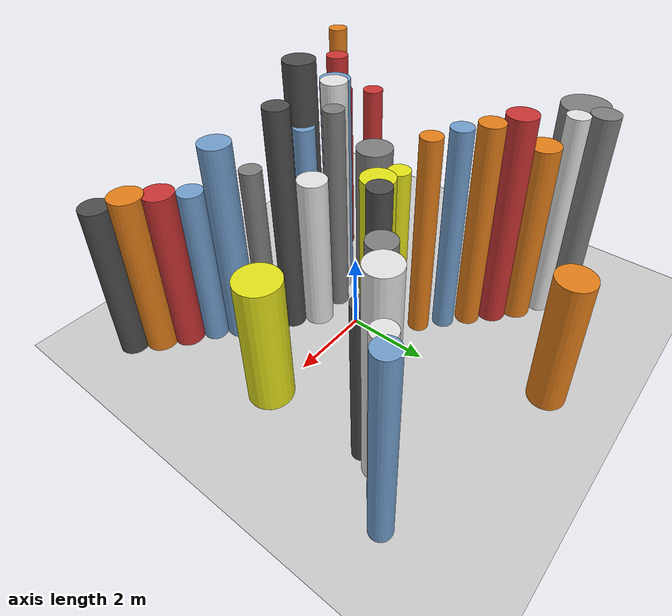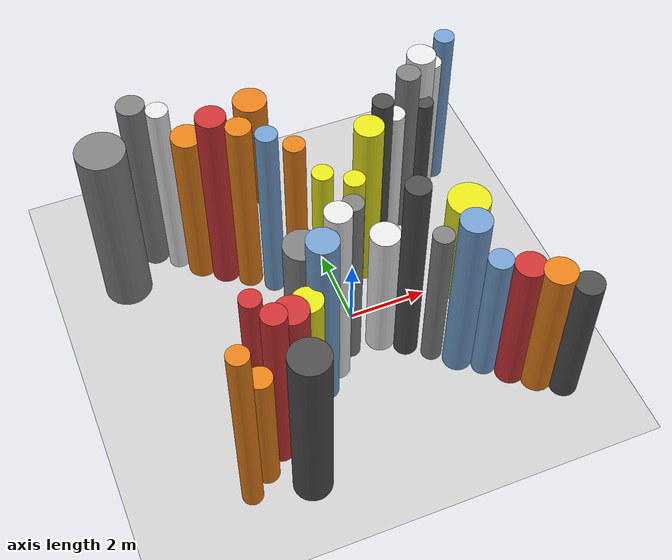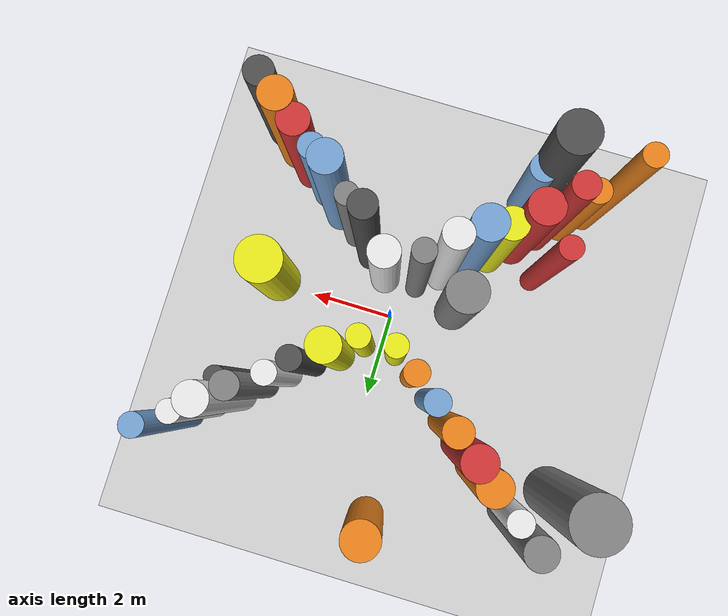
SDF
<?xml version='1.0'?>
<sdf version='1.6'>
  <world name='routeA_rl_v1__dense_recovery__rl_train__bottleneck_corridor__000065'>
    <!-- Sun light -->
    <light name='sun' type='directional'>
      <cast_shadows>1</cast_shadows>
      <pose>0 0 10 0 0 0</pose>
      <diffuse>0.8 0.8 0.8 1</diffuse>
      <specular>0.2 0.2 0.2 1</specular>
      <attenuation>
        <range>1000</range>
        <constant>0.9</constant>
        <linear>0.01</linear>
        <quadratic>0.001</quadratic>
      </attenuation>
      <direction>-0.5 0.1 -0.9</direction>
    </light>

    <!-- Ground plane -->
    <model name='ground_plane'>
      <static>1</static>
      <link name='link'>
        <collision name='collision'>
          <geometry>
            <plane>
              <normal>0 0 1</normal>
              <size>100 100</size>
            </plane>
          </geometry>
          <surface>
            <contact>
              <collide_bitmask>65535</collide_bitmask>
              <ode/>
            </contact>
            <friction>
              <ode>
                <mu>100</mu>
                <mu2>50</mu2>
              </ode>
              <torsional><ode/></torsional>
            </friction>
            <bounce/>
          </surface>
          <max_contacts>10</max_contacts>
        </collision>
        <visual name='visual'>
          <cast_shadows>0</cast_shadows>
          <geometry>
            <plane>
              <normal>0 0 1</normal>
              <size>100 100</size>
            </plane>
          </geometry>
          <material>
            <script>
              <uri>file://media/materials/scripts/gazebo.material</uri>
              <n>Gazebo/Grey</n>
            </script>
          </material>
        </visual>
      </link>
    </model>

    <!-- Environment -->
    <magnetic_field>6e-06 2.3e-05 -4.2e-05</magnetic_field>
    <atmosphere type='adiabatic'/>
    <physics name='default_physics' default='0' type='ode'>
      <gravity>0 0 -9.8</gravity>
      <max_step_size>0.004</max_step_size>
      <real_time_factor>1</real_time_factor>
      <real_time_update_rate>250</real_time_update_rate>
    </physics>
    <scene>
      <ambient>0.4 0.4 0.4 1</ambient>
      <background>0.7 0.7 0.7 1</background>
      <shadows>1</shadows>
    </scene>
    <wind/>
    <spherical_coordinates>
      <surface_model>EARTH_WGS84</surface_model>
      <latitude_deg>0</latitude_deg>
      <longitude_deg>0</longitude_deg>
      <elevation>0</elevation>
      <heading_deg>0</heading_deg>
    </spherical_coordinates>

    <!-- ============ OBSTACLES (40) ============ -->
    <model name='funnel_l_0'>
      <static>1</static>
      <link name='link'>
        <visual name='visual'>
          <geometry>
            <cylinder>
              <radius>0.2511</radius>
              <length>5.7682</length>
            </cylinder>
          </geometry>
          <material>
            <script>
              <n>Gazebo/Orange</n>
              <uri>file://media/materials/scripts/gazebo.material</uri>
            </script>
            <ambient>0.9 0.5 0.1 1</ambient>
          </material>
        </visual>
        <collision name='collision'>
          <geometry>
            <cylinder>
              <radius>0.2511</radius>
              <length>5.7682</length>
            </cylinder>
          </geometry>
          <max_contacts>10</max_contacts>
          <surface>
            <contact><ode/></contact>
            <bounce/>
            <friction>
              <ode><mu>1</mu><mu2>1</mu2></ode>
              <torsional><ode/></torsional>
            </friction>
          </surface>
        </collision>
      </link>
      <pose>-4.0000 -3.8000 2.8841 0 0 0.0000</pose>
    </model>

    <model name='funnel_r_0'>
      <static>1</static>
      <link name='link'>
        <visual name='visual'>
          <geometry>
            <cylinder>
              <radius>0.3391</radius>
              <length>5.4602</length>
            </cylinder>
          </geometry>
          <material>
            <script>
              <n>Gazebo/Grey</n>
              <uri>file://media/materials/scripts/gazebo.material</uri>
            </script>
            <ambient>0.5 0.5 0.5 1</ambient>
          </material>
        </visual>
        <collision name='collision'>
          <geometry>
            <cylinder>
              <radius>0.3391</radius>
              <length>5.4602</length>
            </cylinder>
          </geometry>
          <max_contacts>10</max_contacts>
          <surface>
            <contact><ode/></contact>
            <bounce/>
            <friction>
              <ode><mu>1</mu><mu2>1</mu2></ode>
              <torsional><ode/></torsional>
            </friction>
          </surface>
        </collision>
      </link>
      <pose>-4.0000 3.8000 2.7301 0 0 0.0000</pose>
    </model>

    <model name='funnel_l_1'>
      <static>1</static>
      <link name='link'>
        <visual name='visual'>
          <geometry>
            <cylinder>
              <radius>0.2851</radius>
              <length>4.0687</length>
            </cylinder>
          </geometry>
          <material>
            <script>
              <n>Gazebo/Orange</n>
              <uri>file://media/materials/scripts/gazebo.material</uri>
            </script>
            <ambient>0.9 0.5 0.1 1</ambient>
          </material>
        </visual>
        <collision name='collision'>
          <geometry>
            <cylinder>
              <radius>0.2851</radius>
              <length>4.0687</length>
            </cylinder>
          </geometry>
          <max_contacts>10</max_contacts>
          <surface>
            <contact><ode/></contact>
            <bounce/>
            <friction>
              <ode><mu>1</mu><mu2>1</mu2></ode>
              <torsional><ode/></torsional>
            </friction>
          </surface>
        </collision>
      </link>
      <pose>-3.4857 -3.3857 2.0343 0 0 0.0000</pose>
    </model>

    <model name='funnel_r_1'>
      <static>1</static>
      <link name='link'>
        <visual name='visual'>
          <geometry>
            <cylinder>
              <radius>0.2650</radius>
              <length>5.5007</length>
            </cylinder>
          </geometry>
          <material>
            <script>
              <n>Gazebo/White</n>
              <uri>file://media/materials/scripts/gazebo.material</uri>
            </script>
            <ambient>0.9 0.9 0.9 1</ambient>
          </material>
        </visual>
        <collision name='collision'>
          <geometry>
            <cylinder>
              <radius>0.2650</radius>
              <length>5.5007</length>
            </cylinder>
          </geometry>
          <max_contacts>10</max_contacts>
          <surface>
            <contact><ode/></contact>
            <bounce/>
            <friction>
              <ode><mu>1</mu><mu2>1</mu2></ode>
              <torsional><ode/></torsional>
            </friction>
          </surface>
        </collision>
      </link>
      <pose>-3.4857 3.3857 2.7503 0 0 0.0000</pose>
    </model>

    <model name='funnel_l_2'>
      <static>1</static>
      <link name='link'>
        <visual name='visual'>
          <geometry>
            <cylinder>
              <radius>0.2880</radius>
              <length>5.5020</length>
            </cylinder>
          </geometry>
          <material>
            <script>
              <n>Gazebo/Red</n>
              <uri>file://media/materials/scripts/gazebo.material</uri>
            </script>
            <ambient>0.8 0.2 0.2 1</ambient>
          </material>
        </visual>
        <collision name='collision'>
          <geometry>
            <cylinder>
              <radius>0.2880</radius>
              <length>5.5020</length>
            </cylinder>
          </geometry>
          <max_contacts>10</max_contacts>
          <surface>
            <contact><ode/></contact>
            <bounce/>
            <friction>
              <ode><mu>1</mu><mu2>1</mu2></ode>
              <torsional><ode/></torsional>
            </friction>
          </surface>
        </collision>
      </link>
      <pose>-2.9714 -2.9714 2.7510 0 0 0.0000</pose>
    </model>

    <model name='funnel_r_2'>
      <static>1</static>
      <link name='link'>
        <visual name='visual'>
          <geometry>
            <cylinder>
              <radius>0.3783</radius>
              <length>4.8548</length>
            </cylinder>
          </geometry>
          <material>
            <script>
              <n>Gazebo/Orange</n>
              <uri>file://media/materials/scripts/gazebo.material</uri>
            </script>
            <ambient>0.9 0.5 0.1 1</ambient>
          </material>
        </visual>
        <collision name='collision'>
          <geometry>
            <cylinder>
              <radius>0.3783</radius>
              <length>4.8548</length>
            </cylinder>
          </geometry>
          <max_contacts>10</max_contacts>
          <surface>
            <contact><ode/></contact>
            <bounce/>
            <friction>
              <ode><mu>1</mu><mu2>1</mu2></ode>
              <torsional><ode/></torsional>
            </friction>
          </surface>
        </collision>
      </link>
      <pose>-2.9714 2.9714 2.4274 0 0 0.0000</pose>
    </model>

    <model name='funnel_l_3'>
      <static>1</static>
      <link name='link'>
        <visual name='visual'>
          <geometry>
            <cylinder>
              <radius>0.3934</radius>
              <length>4.8369</length>
            </cylinder>
          </geometry>
          <material>
            <script>
              <n>Gazebo/Red</n>
              <uri>file://media/materials/scripts/gazebo.material</uri>
            </script>
            <ambient>0.8 0.2 0.2 1</ambient>
          </material>
        </visual>
        <collision name='collision'>
          <geometry>
            <cylinder>
              <radius>0.3934</radius>
              <length>4.8369</length>
            </cylinder>
          </geometry>
          <max_contacts>10</max_contacts>
          <surface>
            <contact><ode/></contact>
            <bounce/>
            <friction>
              <ode><mu>1</mu><mu2>1</mu2></ode>
              <torsional><ode/></torsional>
            </friction>
          </surface>
        </collision>
      </link>
      <pose>-2.4571 -2.5571 2.4184 0 0 0.0000</pose>
    </model>

    <model name='funnel_r_3'>
      <static>1</static>
      <link name='link'>
        <visual name='visual'>
          <geometry>
            <cylinder>
              <radius>0.3618</radius>
              <length>5.6729</length>
            </cylinder>
          </geometry>
          <material>
            <script>
              <n>Gazebo/Red</n>
              <uri>file://media/materials/scripts/gazebo.material</uri>
            </script>
            <ambient>0.8 0.2 0.2 1</ambient>
          </material>
        </visual>
        <collision name='collision'>
          <geometry>
            <cylinder>
              <radius>0.3618</radius>
              <length>5.6729</length>
            </cylinder>
          </geometry>
          <max_contacts>10</max_contacts>
          <surface>
            <contact><ode/></contact>
            <bounce/>
            <friction>
              <ode><mu>1</mu><mu2>1</mu2></ode>
              <torsional><ode/></torsional>
            </friction>
          </surface>
        </collision>
      </link>
      <pose>-2.4571 2.5571 2.8365 0 0 0.0000</pose>
    </model>

    <model name='funnel_l_4'>
      <static>1</static>
      <link name='link'>
        <visual name='visual'>
          <geometry>
            <cylinder>
              <radius>0.3599</radius>
              <length>4.4024</length>
            </cylinder>
          </geometry>
          <material>
            <script>
              <n>Gazebo/Yellow</n>
              <uri>file://media/materials/scripts/gazebo.material</uri>
            </script>
            <ambient>0.9 0.9 0.1 1</ambient>
          </material>
        </visual>
        <collision name='collision'>
          <geometry>
            <cylinder>
              <radius>0.3599</radius>
              <length>4.4024</length>
            </cylinder>
          </geometry>
          <max_contacts>10</max_contacts>
          <surface>
            <contact><ode/></contact>
            <bounce/>
            <friction>
              <ode><mu>1</mu><mu2>1</mu2></ode>
              <torsional><ode/></torsional>
            </friction>
          </surface>
        </collision>
      </link>
      <pose>-1.9429 -2.1429 2.2012 0 0 0.0000</pose>
    </model>

    <model name='funnel_r_4'>
      <static>1</static>
      <link name='link'>
        <visual name='visual'>
          <geometry>
            <cylinder>
              <radius>0.3068</radius>
              <length>5.5551</length>
            </cylinder>
          </geometry>
          <material>
            <script>
              <n>Gazebo/Orange</n>
              <uri>file://media/materials/scripts/gazebo.material</uri>
            </script>
            <ambient>0.9 0.5 0.1 1</ambient>
          </material>
        </visual>
        <collision name='collision'>
          <geometry>
            <cylinder>
              <radius>0.3068</radius>
              <length>5.5551</length>
            </cylinder>
          </geometry>
          <max_contacts>10</max_contacts>
          <surface>
            <contact><ode/></contact>
            <bounce/>
            <friction>
              <ode><mu>1</mu><mu2>1</mu2></ode>
              <torsional><ode/></torsional>
            </friction>
          </surface>
        </collision>
      </link>
      <pose>-1.9429 2.1429 2.7775 0 0 0.0000</pose>
    </model>

    <model name='funnel_l_5'>
      <static>1</static>
      <link name='link'>
        <visual name='visual'>
          <geometry>
            <cylinder>
              <radius>0.3697</radius>
              <length>5.6843</length>
            </cylinder>
          </geometry>
          <material>
            <script>
              <n>Gazebo/Blue</n>
              <uri>file://media/materials/scripts/gazebo.material</uri>
            </script>
            <ambient>0.447 0.624 0.812 1</ambient>
          </material>
        </visual>
        <collision name='collision'>
          <geometry>
            <cylinder>
              <radius>0.3697</radius>
              <length>5.6843</length>
            </cylinder>
          </geometry>
          <max_contacts>10</max_contacts>
          <surface>
            <contact><ode/></contact>
            <bounce/>
            <friction>
              <ode><mu>1</mu><mu2>1</mu2></ode>
              <torsional><ode/></torsional>
            </friction>
          </surface>
        </collision>
      </link>
      <pose>-1.4286 -1.7286 2.8421 0 0 0.0000</pose>
    </model>

    <model name='funnel_r_5'>
      <static>1</static>
      <link name='link'>
        <visual name='visual'>
          <geometry>
            <cylinder>
              <radius>0.2661</radius>
              <length>5.5232</length>
            </cylinder>
          </geometry>
          <material>
            <script>
              <n>Gazebo/Blue</n>
              <uri>file://media/materials/scripts/gazebo.material</uri>
            </script>
            <ambient>0.447 0.624 0.812 1</ambient>
          </material>
        </visual>
        <collision name='collision'>
          <geometry>
            <cylinder>
              <radius>0.2661</radius>
              <length>5.5232</length>
            </cylinder>
          </geometry>
          <max_contacts>10</max_contacts>
          <surface>
            <contact><ode/></contact>
            <bounce/>
            <friction>
              <ode><mu>1</mu><mu2>1</mu2></ode>
              <torsional><ode/></torsional>
            </friction>
          </surface>
        </collision>
      </link>
      <pose>-1.4286 1.7286 2.7616 0 0 0.0000</pose>
    </model>

    <model name='funnel_l_6'>
      <static>1</static>
      <link name='link'>
        <visual name='visual'>
          <geometry>
            <cylinder>
              <radius>0.3135</radius>
              <length>5.9145</length>
            </cylinder>
          </geometry>
          <material>
            <script>
              <n>Gazebo/White</n>
              <uri>file://media/materials/scripts/gazebo.material</uri>
            </script>
            <ambient>0.9 0.9 0.9 1</ambient>
          </material>
        </visual>
        <collision name='collision'>
          <geometry>
            <cylinder>
              <radius>0.3135</radius>
              <length>5.9145</length>
            </cylinder>
          </geometry>
          <max_contacts>10</max_contacts>
          <surface>
            <contact><ode/></contact>
            <bounce/>
            <friction>
              <ode><mu>1</mu><mu2>1</mu2></ode>
              <torsional><ode/></torsional>
            </friction>
          </surface>
        </collision>
      </link>
      <pose>-0.9143 -1.3143 2.9572 0 0 0.0000</pose>
    </model>

    <model name='funnel_r_6'>
      <static>1</static>
      <link name='link'>
        <visual name='visual'>
          <geometry>
            <cylinder>
              <radius>0.2603</radius>
              <length>5.3952</length>
            </cylinder>
          </geometry>
          <material>
            <script>
              <n>Gazebo/Orange</n>
              <uri>file://media/materials/scripts/gazebo.material</uri>
            </script>
            <ambient>0.9 0.5 0.1 1</ambient>
          </material>
        </visual>
        <collision name='collision'>
          <geometry>
            <cylinder>
              <radius>0.2603</radius>
              <length>5.3952</length>
            </cylinder>
          </geometry>
          <max_contacts>10</max_contacts>
          <surface>
            <contact><ode/></contact>
            <bounce/>
            <friction>
              <ode><mu>1</mu><mu2>1</mu2></ode>
              <torsional><ode/></torsional>
            </friction>
          </surface>
        </collision>
      </link>
      <pose>-0.9143 1.3143 2.6976 0 0 0.0000</pose>
    </model>

    <model name='funnel_l_7'>
      <static>1</static>
      <link name='link'>
        <visual name='visual'>
          <geometry>
            <cylinder>
              <radius>0.2511</radius>
              <length>5.5447</length>
            </cylinder>
          </geometry>
          <material>
            <script>
              <n>Gazebo/Grey</n>
              <uri>file://media/materials/scripts/gazebo.material</uri>
            </script>
            <ambient>0.5 0.5 0.5 1</ambient>
          </material>
        </visual>
        <collision name='collision'>
          <geometry>
            <cylinder>
              <radius>0.2511</radius>
              <length>5.5447</length>
            </cylinder>
          </geometry>
          <max_contacts>10</max_contacts>
          <surface>
            <contact><ode/></contact>
            <bounce/>
            <friction>
              <ode><mu>1</mu><mu2>1</mu2></ode>
              <torsional><ode/></torsional>
            </friction>
          </surface>
        </collision>
      </link>
      <pose>-0.4000 -0.9000 2.7723 0 0 0.0000</pose>
    </model>

    <model name='funnel_r_7'>
      <static>1</static>
      <link name='link'>
        <visual name='visual'>
          <geometry>
            <cylinder>
              <radius>0.2552</radius>
              <length>4.6659</length>
            </cylinder>
          </geometry>
          <material>
            <script>
              <n>Gazebo/Yellow</n>
              <uri>file://media/materials/scripts/gazebo.material</uri>
            </script>
            <ambient>0.9 0.9 0.1 1</ambient>
          </material>
        </visual>
        <collision name='collision'>
          <geometry>
            <cylinder>
              <radius>0.2552</radius>
              <length>4.6659</length>
            </cylinder>
          </geometry>
          <max_contacts>10</max_contacts>
          <surface>
            <contact><ode/></contact>
            <bounce/>
            <friction>
              <ode><mu>1</mu><mu2>1</mu2></ode>
              <torsional><ode/></torsional>
            </friction>
          </surface>
        </collision>
      </link>
      <pose>-0.4000 0.9000 2.3330 0 0 0.0000</pose>
    </model>

    <model name='funnel_out_l_0'>
      <static>1</static>
      <link name='link'>
        <visual name='visual'>
          <geometry>
            <cylinder>
              <radius>0.3619</radius>
              <length>4.1329</length>
            </cylinder>
          </geometry>
          <material>
            <script>
              <n>Gazebo/White</n>
              <uri>file://media/materials/scripts/gazebo.material</uri>
            </script>
            <ambient>0.9 0.9 0.9 1</ambient>
          </material>
        </visual>
        <collision name='collision'>
          <geometry>
            <cylinder>
              <radius>0.3619</radius>
              <length>4.1329</length>
            </cylinder>
          </geometry>
          <max_contacts>10</max_contacts>
          <surface>
            <contact><ode/></contact>
            <bounce/>
            <friction>
              <ode><mu>1</mu><mu2>1</mu2></ode>
              <torsional><ode/></torsional>
            </friction>
          </surface>
        </collision>
      </link>
      <pose>0.4000 -0.9000 2.0664 0 0 0.0000</pose>
    </model>

    <model name='funnel_out_r_0'>
      <static>1</static>
      <link name='link'>
        <visual name='visual'>
          <geometry>
            <cylinder>
              <radius>0.2657</radius>
              <length>4.1282</length>
            </cylinder>
          </geometry>
          <material>
            <script>
              <n>Gazebo/Yellow</n>
              <uri>file://media/materials/scripts/gazebo.material</uri>
            </script>
            <ambient>0.9 0.9 0.1 1</ambient>
          </material>
        </visual>
        <collision name='collision'>
          <geometry>
            <cylinder>
              <radius>0.2657</radius>
              <length>4.1282</length>
            </cylinder>
          </geometry>
          <max_contacts>10</max_contacts>
          <surface>
            <contact><ode/></contact>
            <bounce/>
            <friction>
              <ode><mu>1</mu><mu2>1</mu2></ode>
              <torsional><ode/></torsional>
            </friction>
          </surface>
        </collision>
      </link>
      <pose>0.4000 0.9000 2.0641 0 0 0.0000</pose>
    </model>

    <model name='funnel_out_l_1'>
      <static>1</static>
      <link name='link'>
        <visual name='visual'>
          <geometry>
            <cylinder>
              <radius>0.2947</radius>
              <length>5.9773</length>
            </cylinder>
          </geometry>
          <material>
            <script>
              <n>Gazebo/DarkGrey</n>
              <uri>file://media/materials/scripts/gazebo.material</uri>
            </script>
            <ambient>0.3 0.3 0.3 1</ambient>
          </material>
        </visual>
        <collision name='collision'>
          <geometry>
            <cylinder>
              <radius>0.2947</radius>
              <length>5.9773</length>
            </cylinder>
          </geometry>
          <max_contacts>10</max_contacts>
          <surface>
            <contact><ode/></contact>
            <bounce/>
            <friction>
              <ode><mu>1</mu><mu2>1</mu2></ode>
              <torsional><ode/></torsional>
            </friction>
          </surface>
        </collision>
      </link>
      <pose>0.9143 -1.3143 2.9887 0 0 0.0000</pose>
    </model>

    <model name='funnel_out_r_1'>
      <static>1</static>
      <link name='link'>
        <visual name='visual'>
          <geometry>
            <cylinder>
              <radius>0.3610</radius>
              <length>5.2778</length>
            </cylinder>
          </geometry>
          <material>
            <script>
              <n>Gazebo/Yellow</n>
              <uri>file://media/materials/scripts/gazebo.material</uri>
            </script>
            <ambient>0.9 0.9 0.1 1</ambient>
          </material>
        </visual>
        <collision name='collision'>
          <geometry>
            <cylinder>
              <radius>0.3610</radius>
              <length>5.2778</length>
            </cylinder>
          </geometry>
          <max_contacts>10</max_contacts>
          <surface>
            <contact><ode/></contact>
            <bounce/>
            <friction>
              <ode><mu>1</mu><mu2>1</mu2></ode>
              <torsional><ode/></torsional>
            </friction>
          </surface>
        </collision>
      </link>
      <pose>0.9143 1.3143 2.6389 0 0 0.0000</pose>
    </model>

    <model name='funnel_out_l_2'>
      <static>1</static>
      <link name='link'>
        <visual name='visual'>
          <geometry>
            <cylinder>
              <radius>0.2562</radius>
              <length>4.5698</length>
            </cylinder>
          </geometry>
          <material>
            <script>
              <n>Gazebo/Grey</n>
              <uri>file://media/materials/scripts/gazebo.material</uri>
            </script>
            <ambient>0.5 0.5 0.5 1</ambient>
          </material>
        </visual>
        <collision name='collision'>
          <geometry>
            <cylinder>
              <radius>0.2562</radius>
              <length>4.5698</length>
            </cylinder>
          </geometry>
          <max_contacts>10</max_contacts>
          <surface>
            <contact><ode/></contact>
            <bounce/>
            <friction>
              <ode><mu>1</mu><mu2>1</mu2></ode>
              <torsional><ode/></torsional>
            </friction>
          </surface>
        </collision>
      </link>
      <pose>1.4286 -1.7286 2.2849 0 0 0.0000</pose>
    </model>

    <model name='funnel_out_r_2'>
      <static>1</static>
      <link name='link'>
        <visual name='visual'>
          <geometry>
            <cylinder>
              <radius>0.2542</radius>
              <length>5.4964</length>
            </cylinder>
          </geometry>
          <material>
            <script>
              <n>Gazebo/DarkGrey</n>
              <uri>file://media/materials/scripts/gazebo.material</uri>
            </script>
            <ambient>0.3 0.3 0.3 1</ambient>
          </material>
        </visual>
        <collision name='collision'>
          <geometry>
            <cylinder>
              <radius>0.2542</radius>
              <length>5.4964</length>
            </cylinder>
          </geometry>
          <max_contacts>10</max_contacts>
          <surface>
            <contact><ode/></contact>
            <bounce/>
            <friction>
              <ode><mu>1</mu><mu2>1</mu2></ode>
              <torsional><ode/></torsional>
            </friction>
          </surface>
        </collision>
      </link>
      <pose>1.4286 1.7286 2.7482 0 0 0.0000</pose>
    </model>

    <model name='funnel_out_l_3'>
      <static>1</static>
      <link name='link'>
        <visual name='visual'>
          <geometry>
            <cylinder>
              <radius>0.3670</radius>
              <length>5.3016</length>
            </cylinder>
          </geometry>
          <material>
            <script>
              <n>Gazebo/Blue</n>
              <uri>file://media/materials/scripts/gazebo.material</uri>
            </script>
            <ambient>0.447 0.624 0.812 1</ambient>
          </material>
        </visual>
        <collision name='collision'>
          <geometry>
            <cylinder>
              <radius>0.3670</radius>
              <length>5.3016</length>
            </cylinder>
          </geometry>
          <max_contacts>10</max_contacts>
          <surface>
            <contact><ode/></contact>
            <bounce/>
            <friction>
              <ode><mu>1</mu><mu2>1</mu2></ode>
              <torsional><ode/></torsional>
            </friction>
          </surface>
        </collision>
      </link>
      <pose>1.9429 -2.1429 2.6508 0 0 0.0000</pose>
    </model>

    <model name='funnel_out_r_3'>
      <static>1</static>
      <link name='link'>
        <visual name='visual'>
          <geometry>
            <cylinder>
              <radius>0.2634</radius>
              <length>4.5288</length>
            </cylinder>
          </geometry>
          <material>
            <script>
              <n>Gazebo/White</n>
              <uri>file://media/materials/scripts/gazebo.material</uri>
            </script>
            <ambient>0.9 0.9 0.9 1</ambient>
          </material>
        </visual>
        <collision name='collision'>
          <geometry>
            <cylinder>
              <radius>0.2634</radius>
              <length>4.5288</length>
            </cylinder>
          </geometry>
          <max_contacts>10</max_contacts>
          <surface>
            <contact><ode/></contact>
            <bounce/>
            <friction>
              <ode><mu>1</mu><mu2>1</mu2></ode>
              <torsional><ode/></torsional>
            </friction>
          </surface>
        </collision>
      </link>
      <pose>1.9429 2.1429 2.2644 0 0 0.0000</pose>
    </model>

    <model name='funnel_out_l_4'>
      <static>1</static>
      <link name='link'>
        <visual name='visual'>
          <geometry>
            <cylinder>
              <radius>0.2978</radius>
              <length>4.2094</length>
            </cylinder>
          </geometry>
          <material>
            <script>
              <n>Gazebo/Blue</n>
              <uri>file://media/materials/scripts/gazebo.material</uri>
            </script>
            <ambient>0.447 0.624 0.812 1</ambient>
          </material>
        </visual>
        <collision name='collision'>
          <geometry>
            <cylinder>
              <radius>0.2978</radius>
              <length>4.2094</length>
            </cylinder>
          </geometry>
          <max_contacts>10</max_contacts>
          <surface>
            <contact><ode/></contact>
            <bounce/>
            <friction>
              <ode><mu>1</mu><mu2>1</mu2></ode>
              <torsional><ode/></torsional>
            </friction>
          </surface>
        </collision>
      </link>
      <pose>2.4571 -2.5571 2.1047 0 0 0.0000</pose>
    </model>

    <model name='funnel_out_r_4'>
      <static>1</static>
      <link name='link'>
        <visual name='visual'>
          <geometry>
            <cylinder>
              <radius>0.2937</radius>
              <length>5.3022</length>
            </cylinder>
          </geometry>
          <material>
            <script>
              <n>Gazebo/Grey</n>
              <uri>file://media/materials/scripts/gazebo.material</uri>
            </script>
            <ambient>0.5 0.5 0.5 1</ambient>
          </material>
        </visual>
        <collision name='collision'>
          <geometry>
            <cylinder>
              <radius>0.2937</radius>
              <length>5.3022</length>
            </cylinder>
          </geometry>
          <max_contacts>10</max_contacts>
          <surface>
            <contact><ode/></contact>
            <bounce/>
            <friction>
              <ode><mu>1</mu><mu2>1</mu2></ode>
              <torsional><ode/></torsional>
            </friction>
          </surface>
        </collision>
      </link>
      <pose>2.4571 2.5571 2.6511 0 0 0.0000</pose>
    </model>

    <model name='funnel_out_l_5'>
      <static>1</static>
      <link name='link'>
        <visual name='visual'>
          <geometry>
            <cylinder>
              <radius>0.3675</radius>
              <length>4.2637</length>
            </cylinder>
          </geometry>
          <material>
            <script>
              <n>Gazebo/Red</n>
              <uri>file://media/materials/scripts/gazebo.material</uri>
            </script>
            <ambient>0.8 0.2 0.2 1</ambient>
          </material>
        </visual>
        <collision name='collision'>
          <geometry>
            <cylinder>
              <radius>0.3675</radius>
              <length>4.2637</length>
            </cylinder>
          </geometry>
          <max_contacts>10</max_contacts>
          <surface>
            <contact><ode/></contact>
            <bounce/>
            <friction>
              <ode><mu>1</mu><mu2>1</mu2></ode>
              <torsional><ode/></torsional>
            </friction>
          </surface>
        </collision>
      </link>
      <pose>2.9714 -2.9714 2.1319 0 0 0.0000</pose>
    </model>

    <model name='funnel_out_r_5'>
      <static>1</static>
      <link name='link'>
        <visual name='visual'>
          <geometry>
            <cylinder>
              <radius>0.3556</radius>
              <length>5.3583</length>
            </cylinder>
          </geometry>
          <material>
            <script>
              <n>Gazebo/White</n>
              <uri>file://media/materials/scripts/gazebo.material</uri>
            </script>
            <ambient>0.9 0.9 0.9 1</ambient>
          </material>
        </visual>
        <collision name='collision'>
          <geometry>
            <cylinder>
              <radius>0.3556</radius>
              <length>5.3583</length>
            </cylinder>
          </geometry>
          <max_contacts>10</max_contacts>
          <surface>
            <contact><ode/></contact>
            <bounce/>
            <friction>
              <ode><mu>1</mu><mu2>1</mu2></ode>
              <torsional><ode/></torsional>
            </friction>
          </surface>
        </collision>
      </link>
      <pose>2.9714 2.9714 2.6791 0 0 0.0000</pose>
    </model>

    <model name='funnel_out_l_6'>
      <static>1</static>
      <link name='link'>
        <visual name='visual'>
          <geometry>
            <cylinder>
              <radius>0.3896</radius>
              <length>4.2860</length>
            </cylinder>
          </geometry>
          <material>
            <script>
              <n>Gazebo/Orange</n>
              <uri>file://media/materials/scripts/gazebo.material</uri>
            </script>
            <ambient>0.9 0.5 0.1 1</ambient>
          </material>
        </visual>
        <collision name='collision'>
          <geometry>
            <cylinder>
              <radius>0.3896</radius>
              <length>4.2860</length>
            </cylinder>
          </geometry>
          <max_contacts>10</max_contacts>
          <surface>
            <contact><ode/></contact>
            <bounce/>
            <friction>
              <ode><mu>1</mu><mu2>1</mu2></ode>
              <torsional><ode/></torsional>
            </friction>
          </surface>
        </collision>
      </link>
      <pose>3.4857 -3.3857 2.1430 0 0 0.0000</pose>
    </model>

    <model name='funnel_out_r_6'>
      <static>1</static>
      <link name='link'>
        <visual name='visual'>
          <geometry>
            <cylinder>
              <radius>0.2523</radius>
              <length>4.5976</length>
            </cylinder>
          </geometry>
          <material>
            <script>
              <n>Gazebo/White</n>
              <uri>file://media/materials/scripts/gazebo.material</uri>
            </script>
            <ambient>0.9 0.9 0.9 1</ambient>
          </material>
        </visual>
        <collision name='collision'>
          <geometry>
            <cylinder>
              <radius>0.2523</radius>
              <length>4.5976</length>
            </cylinder>
          </geometry>
          <max_contacts>10</max_contacts>
          <surface>
            <contact><ode/></contact>
            <bounce/>
            <friction>
              <ode><mu>1</mu><mu2>1</mu2></ode>
              <torsional><ode/></torsional>
            </friction>
          </surface>
        </collision>
      </link>
      <pose>3.4857 3.3857 2.2988 0 0 0.0000</pose>
    </model>

    <model name='funnel_out_l_7'>
      <static>1</static>
      <link name='link'>
        <visual name='visual'>
          <geometry>
            <cylinder>
              <radius>0.3433</radius>
              <length>4.0988</length>
            </cylinder>
          </geometry>
          <material>
            <script>
              <n>Gazebo/DarkGrey</n>
              <uri>file://media/materials/scripts/gazebo.material</uri>
            </script>
            <ambient>0.3 0.3 0.3 1</ambient>
          </material>
        </visual>
        <collision name='collision'>
          <geometry>
            <cylinder>
              <radius>0.3433</radius>
              <length>4.0988</length>
            </cylinder>
          </geometry>
          <max_contacts>10</max_contacts>
          <surface>
            <contact><ode/></contact>
            <bounce/>
            <friction>
              <ode><mu>1</mu><mu2>1</mu2></ode>
              <torsional><ode/></torsional>
            </friction>
          </surface>
        </collision>
      </link>
      <pose>4.0000 -3.8000 2.0494 0 0 0.0000</pose>
    </model>

    <model name='funnel_out_r_7'>
      <static>1</static>
      <link name='link'>
        <visual name='visual'>
          <geometry>
            <cylinder>
              <radius>0.2572</radius>
              <length>4.9180</length>
            </cylinder>
          </geometry>
          <material>
            <script>
              <n>Gazebo/Blue</n>
              <uri>file://media/materials/scripts/gazebo.material</uri>
            </script>
            <ambient>0.447 0.624 0.812 1</ambient>
          </material>
        </visual>
        <collision name='collision'>
          <geometry>
            <cylinder>
              <radius>0.2572</radius>
              <length>4.9180</length>
            </cylinder>
          </geometry>
          <max_contacts>10</max_contacts>
          <surface>
            <contact><ode/></contact>
            <bounce/>
            <friction>
              <ode><mu>1</mu><mu2>1</mu2></ode>
              <torsional><ode/></torsional>
            </friction>
          </surface>
        </collision>
      </link>
      <pose>4.0000 3.8000 2.4590 0 0 0.0000</pose>
    </model>

    <model name='bn_scatter_0'>
      <static>1</static>
      <link name='link'>
        <visual name='visual'>
          <geometry>
            <cylinder>
              <radius>0.2591</radius>
              <length>4.7734</length>
            </cylinder>
          </geometry>
          <material>
            <script>
              <n>Gazebo/Red</n>
              <uri>file://media/materials/scripts/gazebo.material</uri>
            </script>
            <ambient>0.8 0.2 0.2 1</ambient>
          </material>
        </visual>
        <collision name='collision'>
          <geometry>
            <cylinder>
              <radius>0.2591</radius>
              <length>4.7734</length>
            </cylinder>
          </geometry>
          <max_contacts>10</max_contacts>
          <surface>
            <contact><ode/></contact>
            <bounce/>
            <friction>
              <ode><mu>1</mu><mu2>1</mu2></ode>
              <torsional><ode/></torsional>
            </friction>
          </surface>
        </collision>
      </link>
      <pose>-3.1394 -1.9136 2.3867 0 0 0.0000</pose>
    </model>

    <model name='bn_scatter_1'>
      <static>1</static>
      <link name='link'>
        <visual name='visual'>
          <geometry>
            <cylinder>
              <radius>0.4569</radius>
              <length>4.2346</length>
            </cylinder>
          </geometry>
          <material>
            <script>
              <n>Gazebo/Grey</n>
              <uri>file://media/materials/scripts/gazebo.material</uri>
            </script>
            <ambient>0.5 0.5 0.5 1</ambient>
          </material>
        </visual>
        <collision name='collision'>
          <geometry>
            <cylinder>
              <radius>0.4569</radius>
              <length>4.2346</length>
            </cylinder>
          </geometry>
          <max_contacts>10</max_contacts>
          <surface>
            <contact><ode/></contact>
            <bounce/>
            <friction>
              <ode><mu>1</mu><mu2>1</mu2></ode>
              <torsional><ode/></torsional>
            </friction>
          </surface>
        </collision>
      </link>
      <pose>-1.4689 -0.5756 2.1173 0 0 0.0000</pose>
    </model>

    <model name='bn_scatter_2'>
      <static>1</static>
      <link name='link'>
        <visual name='visual'>
          <geometry>
            <cylinder>
              <radius>0.5330</radius>
              <length>3.3703</length>
            </cylinder>
          </geometry>
          <material>
            <script>
              <n>Gazebo/Yellow</n>
              <uri>file://media/materials/scripts/gazebo.material</uri>
            </script>
            <ambient>0.9 0.9 0.1 1</ambient>
          </material>
        </visual>
        <collision name='collision'>
          <geometry>
            <cylinder>
              <radius>0.5330</radius>
              <length>3.3703</length>
            </cylinder>
          </geometry>
          <max_contacts>10</max_contacts>
          <surface>
            <contact><ode/></contact>
            <bounce/>
            <friction>
              <ode><mu>1</mu><mu2>1</mu2></ode>
              <torsional><ode/></torsional>
            </friction>
          </surface>
        </collision>
      </link>
      <pose>2.9573 -0.1009 1.6852 0 0 0.0000</pose>
    </model>

    <model name='bn_scatter_3'>
      <static>1</static>
      <link name='link'>
        <visual name='visual'>
          <geometry>
            <cylinder>
              <radius>0.2244</radius>
              <length>4.2243</length>
            </cylinder>
          </geometry>
          <material>
            <script>
              <n>Gazebo/DarkGrey</n>
              <uri>file://media/materials/scripts/gazebo.material</uri>
            </script>
            <ambient>0.3 0.3 0.3 1</ambient>
          </material>
        </visual>
        <collision name='collision'>
          <geometry>
            <cylinder>
              <radius>0.2244</radius>
              <length>4.2243</length>
            </cylinder>
          </geometry>
          <max_contacts>10</max_contacts>
          <surface>
            <contact><ode/></contact>
            <bounce/>
            <friction>
              <ode><mu>1</mu><mu2>1</mu2></ode>
              <torsional><ode/></torsional>
            </friction>
          </surface>
        </collision>
      </link>
      <pose>2.9127 2.4975 2.1122 0 0 0.0000</pose>
    </model>

    <model name='bn_scatter_4'>
      <static>1</static>
      <link name='link'>
        <visual name='visual'>
          <geometry>
            <cylinder>
              <radius>0.4421</radius>
              <length>3.5003</length>
            </cylinder>
          </geometry>
          <material>
            <script>
              <n>Gazebo/Orange</n>
              <uri>file://media/materials/scripts/gazebo.material</uri>
            </script>
            <ambient>0.9 0.5 0.1 1</ambient>
          </material>
        </visual>
        <collision name='collision'>
          <geometry>
            <cylinder>
              <radius>0.4421</radius>
              <length>3.5003</length>
            </cylinder>
          </geometry>
          <max_contacts>10</max_contacts>
          <surface>
            <contact><ode/></contact>
            <bounce/>
            <friction>
              <ode><mu>1</mu><mu2>1</mu2></ode>
              <torsional><ode/></torsional>
            </friction>
          </surface>
        </collision>
      </link>
      <pose>-0.8269 4.8746 1.7502 0 0 0.0000</pose>
    </model>

    <model name='bn_scatter_5'>
      <static>1</static>
      <link name='link'>
        <visual name='visual'>
          <geometry>
            <cylinder>
              <radius>0.4673</radius>
              <length>5.2457</length>
            </cylinder>
          </geometry>
          <material>
            <script>
              <n>Gazebo/DarkGrey</n>
              <uri>file://media/materials/scripts/gazebo.material</uri>
            </script>
            <ambient>0.3 0.3 0.3 1</ambient>
          </material>
        </visual>
        <collision name='collision'>
          <geometry>
            <cylinder>
              <radius>0.4673</radius>
              <length>5.2457</length>
            </cylinder>
          </geometry>
          <max_contacts>10</max_contacts>
          <surface>
            <contact><ode/></contact>
            <bounce/>
            <friction>
              <ode><mu>1</mu><mu2>1</mu2></ode>
              <torsional><ode/></torsional>
            </friction>
          </surface>
        </collision>
      </link>
      <pose>-2.6097 -4.0191 2.6229 0 0 0.0000</pose>
    </model>

    <model name='bn_scatter_6'>
      <static>1</static>
      <link name='link'>
        <visual name='visual'>
          <geometry>
            <cylinder>
              <radius>0.5960</radius>
              <length>5.0981</length>
            </cylinder>
          </geometry>
          <material>
            <script>
              <n>Gazebo/Grey</n>
              <uri>file://media/materials/scripts/gazebo.material</uri>
            </script>
            <ambient>0.5 0.5 0.5 1</ambient>
          </material>
        </visual>
        <collision name='collision'>
          <geometry>
            <cylinder>
              <radius>0.5960</radius>
              <length>5.0981</length>
            </cylinder>
          </geometry>
          <max_contacts>10</max_contacts>
          <surface>
            <contact><ode/></contact>
            <bounce/>
            <friction>
              <ode><mu>1</mu><mu2>1</mu2></ode>
              <torsional><ode/></torsional>
            </friction>
          </surface>
        </collision>
      </link>
      <pose>-4.9772 3.0232 2.5490 0 0 0.0000</pose>
    </model>

    <model name='bn_scatter_7'>
      <static>1</static>
      <link name='link'>
        <visual name='visual'>
          <geometry>
            <cylinder>
              <radius>0.3271</radius>
              <length>3.4422</length>
            </cylinder>
          </geometry>
          <material>
            <script>
              <n>Gazebo/Blue</n>
              <uri>file://media/materials/scripts/gazebo.material</uri>
            </script>
            <ambient>0.447 0.624 0.812 1</ambient>
          </material>
        </visual>
        <collision name='collision'>
          <geometry>
            <cylinder>
              <radius>0.3271</radius>
              <length>3.4422</length>
            </cylinder>
          </geometry>
          <max_contacts>10</max_contacts>
          <surface>
            <contact><ode/></contact>
            <bounce/>
            <friction>
              <ode><mu>1</mu><mu2>1</mu2></ode>
              <torsional><ode/></torsional>
            </friction>
          </surface>
        </collision>
      </link>
      <pose>-2.3485 -3.7404 1.7211 0 0 0.0000</pose>
    </model>

    <!-- GUI camera -->
    <gui fullscreen='0'>
      <camera name='user_camera'>
        <pose>-15 0 18 0 0.85 0.15</pose>
        <view_controller>orbit</view_controller>
        <projection_type>perspective</projection_type>
      </camera>
    </gui>
  </world>
</sdf>
